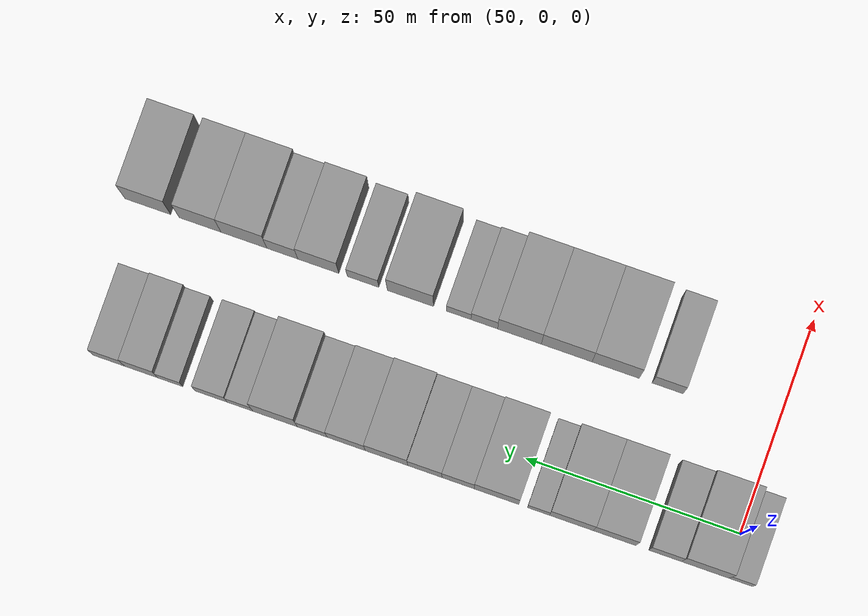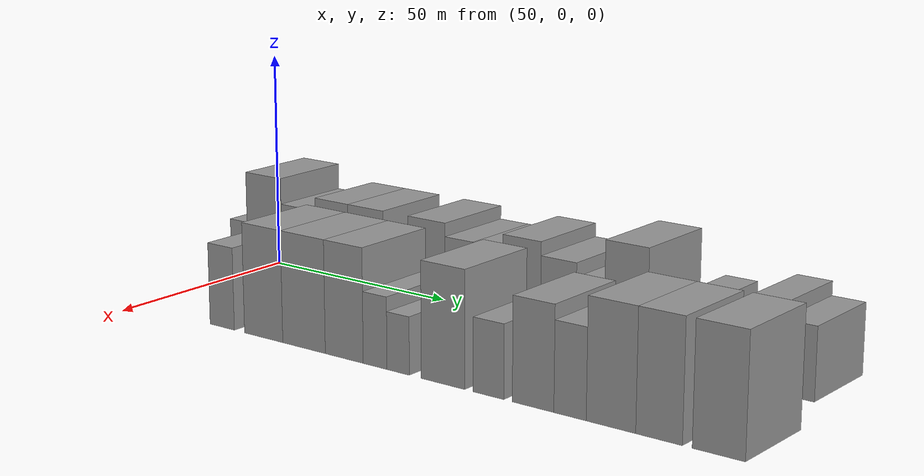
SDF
<sdf version="1.6">
 <world name="default">
  <model name="building_32">
   <static>1</static>
   <pose>50.0000 -3.4309 0 0.000000 0.000000 0.000000</pose>
   <link name="link">
    <pose>0 0 6.00 0 0 0</pose>
    <collision name="collision"><geometry><box><size>20.0000 5.4626 12.0000</size></box></geometry></collision>
    <visual name="visual">
     <cast_shadows>0</cast_shadows>
     <geometry><box><size>20.0000 5.4626 12.0000</size></box></geometry>
     <material>
      <script>
       <uri>model://grey_wall/materials/scripts</uri>
       <uri>model://grey_wall/materials/textures</uri>
       <name>vrc/grey_wall</name>
      </script>
     </material>
    </visual>
   </link>
  </model>
  <model name="building_33">
   <static>1</static>
   <pose>50.0000 4.8221 0 0.000000 0.000000 0.000000</pose>
   <link name="link">
    <pose>0 0 12.00 0 0 0</pose>
    <collision name="collision"><geometry><box><size>20.0000 11.0434 24.0000</size></box></geometry></collision>
    <visual name="visual">
     <cast_shadows>0</cast_shadows>
     <geometry><box><size>20.0000 11.0434 24.0000</size></box></geometry>
     <material>
      <script>
       <uri>model://grey_wall/materials/scripts</uri>
       <uri>model://grey_wall/materials/textures</uri>
       <name>vrc/grey_wall</name>
      </script>
     </material>
    </visual>
   </link>
  </model>
  <model name="building_34">
   <static>1</static>
   <pose>50.0000 14.1204 0 0.000000 0.000000 0.000000</pose>
   <link name="link">
    <pose>0 0 9.00 0 0 0</pose>
    <collision name="collision"><geometry><box><size>20.0000 7.5531 18.0000</size></box></geometry></collision>
    <visual name="visual">
     <cast_shadows>0</cast_shadows>
     <geometry><box><size>20.0000 7.5531 18.0000</size></box></geometry>
     <material>
      <script>
       <uri>model://grey_wall/materials/scripts</uri>
       <uri>model://grey_wall/materials/textures</uri>
       <name>vrc/grey_wall</name>
      </script>
     </material>
    </visual>
   </link>
  </model>
  <model name="building_35">
   <static>1</static>
   <pose>50.0000 25.8246 0 0.000000 0.000000 0.000000</pose>
   <link name="link">
    <pose>0 0 10.50 0 0 0</pose>
    <collision name="collision"><geometry><box><size>20.0000 9.8552 21.0000</size></box></geometry></collision>
    <visual name="visual">
     <cast_shadows>0</cast_shadows>
     <geometry><box><size>20.0000 9.8552 21.0000</size></box></geometry>
     <material>
      <script>
       <uri>model://grey_wall/materials/scripts</uri>
       <uri>model://grey_wall/materials/textures</uri>
       <name>vrc/grey_wall</name>
      </script>
     </material>
    </visual>
   </link>
  </model>
  <model name="building_36">
   <static>1</static>
   <pose>50.0000 35.8675 0 0.000000 0.000000 0.000000</pose>
   <link name="link">
    <pose>0 0 10.50 0 0 0</pose>
    <collision name="collision"><geometry><box><size>20.0000 10.2308 21.0000</size></box></geometry></collision>
    <visual name="visual">
     <cast_shadows>0</cast_shadows>
     <geometry><box><size>20.0000 10.2308 21.0000</size></box></geometry>
     <material>
      <script>
       <uri>model://grey_wall/materials/scripts</uri>
       <uri>model://grey_wall/materials/textures</uri>
       <name>vrc/grey_wall</name>
      </script>
     </material>
    </visual>
   </link>
  </model>
  <model name="building_37">
   <static>1</static>
   <pose>50.0000 43.5499 0 0.000000 0.000000 0.000000</pose>
   <link name="link">
    <pose>0 0 6.00 0 0 0</pose>
    <collision name="collision"><geometry><box><size>20.0000 5.1339 12.0000</size></box></geometry></collision>
    <visual name="visual">
     <cast_shadows>0</cast_shadows>
     <geometry><box><size>20.0000 5.1339 12.0000</size></box></geometry>
     <material>
      <script>
       <uri>model://grey_wall/materials/scripts</uri>
       <uri>model://grey_wall/materials/textures</uri>
       <name>vrc/grey_wall</name>
      </script>
     </material>
    </visual>
   </link>
  </model>
  <model name="building_38">
   <static>1</static>
   <pose>50.0000 53.2975 0 0.000000 0.000000 0.000000</pose>
   <link name="link">
    <pose>0 0 10.50 0 0 0</pose>
    <collision name="collision"><geometry><box><size>20.0000 10.3613 21.0000</size></box></geometry></collision>
    <visual name="visual">
     <cast_shadows>0</cast_shadows>
     <geometry><box><size>20.0000 10.3613 21.0000</size></box></geometry>
     <material>
      <script>
       <uri>model://grey_wall/materials/scripts</uri>
       <uri>model://grey_wall/materials/textures</uri>
       <name>vrc/grey_wall</name>
      </script>
     </material>
    </visual>
   </link>
  </model>
  <model name="building_39">
   <static>1</static>
   <pose>50.0000 62.2341 0 0.000000 0.000000 0.000000</pose>
   <link name="link">
    <pose>0 0 9.00 0 0 0</pose>
    <collision name="collision"><geometry><box><size>20.0000 7.5119 18.0000</size></box></geometry></collision>
    <visual name="visual">
     <cast_shadows>0</cast_shadows>
     <geometry><box><size>20.0000 7.5119 18.0000</size></box></geometry>
     <material>
      <script>
       <uri>model://grey_wall/materials/scripts</uri>
       <uri>model://grey_wall/materials/textures</uri>
       <name>vrc/grey_wall</name>
      </script>
     </material>
    </visual>
   </link>
  </model>
  <model name="building_40">
   <static>1</static>
   <pose>50.0000 69.9717 0 0.000000 0.000000 0.000000</pose>
   <link name="link">
    <pose>0 0 9.00 0 0 0</pose>
    <collision name="collision"><geometry><box><size>20.0000 7.9632 18.0000</size></box></geometry></collision>
    <visual name="visual">
     <cast_shadows>0</cast_shadows>
     <geometry><box><size>20.0000 7.9632 18.0000</size></box></geometry>
     <material>
      <script>
       <uri>model://grey_wall/materials/scripts</uri>
       <uri>model://grey_wall/materials/textures</uri>
       <name>vrc/grey_wall</name>
      </script>
     </material>
    </visual>
   </link>
  </model>
  <model name="building_41">
   <static>1</static>
   <pose>50.0000 78.8873 0 0.000000 0.000000 0.000000</pose>
   <link name="link">
    <pose>0 0 10.50 0 0 0</pose>
    <collision name="collision"><geometry><box><size>20.0000 9.8679 21.0000</size></box></geometry></collision>
    <visual name="visual">
     <cast_shadows>0</cast_shadows>
     <geometry><box><size>20.0000 9.8679 21.0000</size></box></geometry>
     <material>
      <script>
       <uri>model://grey_wall/materials/scripts</uri>
       <uri>model://grey_wall/materials/textures</uri>
       <name>vrc/grey_wall</name>
      </script>
     </material>
    </visual>
   </link>
  </model>
  <model name="building_42">
   <static>1</static>
   <pose>50.0000 88.2844 0 0.000000 0.000000 0.000000</pose>
   <link name="link">
    <pose>0 0 9.00 0 0 0</pose>
    <collision name="collision"><geometry><box><size>20.0000 8.9264 18.0000</size></box></geometry></collision>
    <visual name="visual">
     <cast_shadows>0</cast_shadows>
     <geometry><box><size>20.0000 8.9264 18.0000</size></box></geometry>
     <material>
      <script>
       <uri>model://grey_wall/materials/scripts</uri>
       <uri>model://grey_wall/materials/textures</uri>
       <name>vrc/grey_wall</name>
      </script>
     </material>
    </visual>
   </link>
  </model>
  <model name="building_43">
   <static>1</static>
   <pose>50.0000 96.2258 0 0.000000 0.000000 0.000000</pose>
   <link name="link">
    <pose>0 0 7.50 0 0 0</pose>
    <collision name="collision"><geometry><box><size>20.0000 6.9563 15.0000</size></box></geometry></collision>
    <visual name="visual">
     <cast_shadows>0</cast_shadows>
     <geometry><box><size>20.0000 6.9563 15.0000</size></box></geometry>
     <material>
      <script>
       <uri>model://grey_wall/materials/scripts</uri>
       <uri>model://grey_wall/materials/textures</uri>
       <name>vrc/grey_wall</name>
      </script>
     </material>
    </visual>
   </link>
  </model>
  <model name="building_44">
   <static>1</static>
   <pose>50.0000 104.8939 0 0.000000 0.000000 0.000000</pose>
   <link name="link">
    <pose>0 0 12.00 0 0 0</pose>
    <collision name="collision"><geometry><box><size>20.0000 10.3800 24.0000</size></box></geometry></collision>
    <visual name="visual">
     <cast_shadows>0</cast_shadows>
     <geometry><box><size>20.0000 10.3800 24.0000</size></box></geometry>
     <material>
      <script>
       <uri>model://grey_wall/materials/scripts</uri>
       <uri>model://grey_wall/materials/textures</uri>
       <name>vrc/grey_wall</name>
      </script>
     </material>
    </visual>
   </link>
  </model>
  <model name="building_45">
   <static>1</static>
   <pose>50.0000 113.0699 0 0.000000 0.000000 0.000000</pose>
   <link name="link">
    <pose>0 0 6.00 0 0 0</pose>
    <collision name="collision"><geometry><box><size>20.0000 5.9718 12.0000</size></box></geometry></collision>
    <visual name="visual">
     <cast_shadows>0</cast_shadows>
     <geometry><box><size>20.0000 5.9718 12.0000</size></box></geometry>
     <material>
      <script>
       <uri>model://grey_wall/materials/scripts</uri>
       <uri>model://grey_wall/materials/textures</uri>
       <name>vrc/grey_wall</name>
      </script>
     </material>
    </visual>
   </link>
  </model>
  <model name="building_46">
   <static>1</static>
   <pose>50.0000 119.7701 0 0.000000 0.000000 0.000000</pose>
   <link name="link">
    <pose>0 0 7.50 0 0 0</pose>
    <collision name="collision"><geometry><box><size>20.0000 7.4286 15.0000</size></box></geometry></collision>
    <visual name="visual">
     <cast_shadows>0</cast_shadows>
     <geometry><box><size>20.0000 7.4286 15.0000</size></box></geometry>
     <material>
      <script>
       <uri>model://grey_wall/materials/scripts</uri>
       <uri>model://grey_wall/materials/textures</uri>
       <name>vrc/grey_wall</name>
      </script>
     </material>
    </visual>
   </link>
  </model>
  <model name="building_47">
   <static>1</static>
   <pose>50.0000 129.3708 0 0.000000 0.000000 0.000000</pose>
   <link name="link">
    <pose>0 0 6.00 0 0 0</pose>
    <collision name="collision"><geometry><box><size>20.0000 5.7727 12.0000</size></box></geometry></collision>
    <visual name="visual">
     <cast_shadows>0</cast_shadows>
     <geometry><box><size>20.0000 5.7727 12.0000</size></box></geometry>
     <material>
      <script>
       <uri>model://grey_wall/materials/scripts</uri>
       <uri>model://grey_wall/materials/textures</uri>
       <name>vrc/grey_wall</name>
      </script>
     </material>
    </visual>
   </link>
  </model>
  <model name="building_48">
   <static>1</static>
   <pose>50.0000 136.1552 0 0.000000 0.000000 0.000000</pose>
   <link name="link">
    <pose>0 0 9.00 0 0 0</pose>
    <collision name="collision"><geometry><box><size>20.0000 7.7961 18.0000</size></box></geometry></collision>
    <visual name="visual">
     <cast_shadows>0</cast_shadows>
     <geometry><box><size>20.0000 7.7961 18.0000</size></box></geometry>
     <material>
      <script>
       <uri>model://grey_wall/materials/scripts</uri>
       <uri>model://grey_wall/materials/textures</uri>
       <name>vrc/grey_wall</name>
      </script>
     </material>
    </visual>
   </link>
  </model>
  <model name="building_49">
   <static>1</static>
   <pose>50.0000 143.7373 0 0.000000 0.000000 0.000000</pose>
   <link name="link">
    <pose>0 0 7.50 0 0 0</pose>
    <collision name="collision"><geometry><box><size>20.0000 7.3680 15.0000</size></box></geometry></collision>
    <visual name="visual">
     <cast_shadows>0</cast_shadows>
     <geometry><box><size>20.0000 7.3680 15.0000</size></box></geometry>
     <material>
      <script>
       <uri>model://grey_wall/materials/scripts</uri>
       <uri>model://grey_wall/materials/textures</uri>
       <name>vrc/grey_wall</name>
      </script>
     </material>
    </visual>
   </link>
  </model>
  <model name="building_98">
   <static>1</static>
   <pose>85.0000 25.6211 0 0.000000 0.000000 0.000000</pose>
   <link name="link">
    <pose>0 0 9.00 0 0 0</pose>
    <collision name="collision"><geometry><box><size>20.0000 7.2183 18.0000</size></box></geometry></collision>
    <visual name="visual">
     <cast_shadows>0</cast_shadows>
     <geometry><box><size>20.0000 7.2183 18.0000</size></box></geometry>
     <material>
      <script>
       <uri>model://grey_wall/materials/scripts</uri>
       <uri>model://grey_wall/materials/textures</uri>
       <name>vrc/grey_wall</name>
      </script>
     </material>
    </visual>
   </link>
  </model>
  <model name="building_99">
   <static>1</static>
   <pose>85.0000 37.7365 0 0.000000 0.000000 0.000000</pose>
   <link name="link">
    <pose>0 0 12.00 0 0 0</pose>
    <collision name="collision"><geometry><box><size>20.0000 11.0126 24.0000</size></box></geometry></collision>
    <visual name="visual">
     <cast_shadows>0</cast_shadows>
     <geometry><box><size>20.0000 11.0126 24.0000</size></box></geometry>
     <material>
      <script>
       <uri>model://grey_wall/materials/scripts</uri>
       <uri>model://grey_wall/materials/textures</uri>
       <name>vrc/grey_wall</name>
      </script>
     </material>
    </visual>
   </link>
  </model>
  <model name="building_100">
   <static>1</static>
   <pose>85.0000 49.1598 0 0.000000 0.000000 0.000000</pose>
   <link name="link">
    <pose>0 0 12.00 0 0 0</pose>
    <collision name="collision"><geometry><box><size>20.0000 11.8340 24.0000</size></box></geometry></collision>
    <visual name="visual">
     <cast_shadows>0</cast_shadows>
     <geometry><box><size>20.0000 11.8340 24.0000</size></box></geometry>
     <material>
      <script>
       <uri>model://grey_wall/materials/scripts</uri>
       <uri>model://grey_wall/materials/textures</uri>
       <name>vrc/grey_wall</name>
      </script>
     </material>
    </visual>
   </link>
  </model>
  <model name="building_101">
   <static>1</static>
   <pose>85.0000 60.1749 0 0.000000 0.000000 0.000000</pose>
   <link name="link">
    <pose>0 0 12.00 0 0 0</pose>
    <collision name="collision"><geometry><box><size>20.0000 10.1961 24.0000</size></box></geometry></collision>
    <visual name="visual">
     <cast_shadows>0</cast_shadows>
     <geometry><box><size>20.0000 10.1961 24.0000</size></box></geometry>
     <material>
      <script>
       <uri>model://grey_wall/materials/scripts</uri>
       <uri>model://grey_wall/materials/textures</uri>
       <name>vrc/grey_wall</name>
      </script>
     </material>
    </visual>
   </link>
  </model>
  <model name="building_102">
   <static>1</static>
   <pose>85.0000 68.3867 0 0.000000 0.000000 0.000000</pose>
   <link name="link">
    <pose>0 0 7.50 0 0 0</pose>
    <collision name="collision"><geometry><box><size>20.0000 6.2275 15.0000</size></box></geometry></collision>
    <visual name="visual">
     <cast_shadows>0</cast_shadows>
     <geometry><box><size>20.0000 6.2275 15.0000</size></box></geometry>
     <material>
      <script>
       <uri>model://grey_wall/materials/scripts</uri>
       <uri>model://grey_wall/materials/textures</uri>
       <name>vrc/grey_wall</name>
      </script>
     </material>
    </visual>
   </link>
  </model>
  <model name="building_103">
   <static>1</static>
   <pose>85.0000 74.3797 0 0.000000 0.000000 0.000000</pose>
   <link name="link">
    <pose>0 0 6.00 0 0 0</pose>
    <collision name="collision"><geometry><box><size>20.0000 5.7584 12.0000</size></box></geometry></collision>
    <visual name="visual">
     <cast_shadows>0</cast_shadows>
     <geometry><box><size>20.0000 5.7584 12.0000</size></box></geometry>
     <material>
      <script>
       <uri>model://grey_wall/materials/scripts</uri>
       <uri>model://grey_wall/materials/textures</uri>
       <name>vrc/grey_wall</name>
      </script>
     </material>
    </visual>
   </link>
  </model>
  <model name="building_104">
   <static>1</static>
   <pose>85.0000 85.6595 0 0.000000 0.000000 0.000000</pose>
   <link name="link">
    <pose>0 0 12.00 0 0 0</pose>
    <collision name="collision"><geometry><box><size>20.0000 10.8012 24.0000</size></box></geometry></collision>
    <visual name="visual">
     <cast_shadows>0</cast_shadows>
     <geometry><box><size>20.0000 10.8012 24.0000</size></box></geometry>
     <material>
      <script>
       <uri>model://grey_wall/materials/scripts</uri>
       <uri>model://grey_wall/materials/textures</uri>
       <name>vrc/grey_wall</name>
      </script>
     </material>
    </visual>
   </link>
  </model>
  <model name="building_105">
   <static>1</static>
   <pose>85.0000 96.7457 0 0.000000 0.000000 0.000000</pose>
   <link name="link">
    <pose>0 0 7.50 0 0 0</pose>
    <collision name="collision"><geometry><box><size>20.0000 7.3713 15.0000</size></box></geometry></collision>
    <visual name="visual">
     <cast_shadows>0</cast_shadows>
     <geometry><box><size>20.0000 7.3713 15.0000</size></box></geometry>
     <material>
      <script>
       <uri>model://grey_wall/materials/scripts</uri>
       <uri>model://grey_wall/materials/textures</uri>
       <name>vrc/grey_wall</name>
      </script>
     </material>
    </visual>
   </link>
  </model>
  <model name="building_106">
   <static>1</static>
   <pose>85.0000 107.2234 0 0.000000 0.000000 0.000000</pose>
   <link name="link">
    <pose>0 0 10.50 0 0 0</pose>
    <collision name="collision"><geometry><box><size>20.0000 9.5841 21.0000</size></box></geometry></collision>
    <visual name="visual">
     <cast_shadows>0</cast_shadows>
     <geometry><box><size>20.0000 9.5841 21.0000</size></box></geometry>
     <material>
      <script>
       <uri>model://grey_wall/materials/scripts</uri>
       <uri>model://grey_wall/materials/textures</uri>
       <name>vrc/grey_wall</name>
      </script>
     </material>
    </visual>
   </link>
  </model>
  <model name="building_107">
   <static>1</static>
   <pose>85.0000 115.6477 0 0.000000 0.000000 0.000000</pose>
   <link name="link">
    <pose>0 0 9.00 0 0 0</pose>
    <collision name="collision"><geometry><box><size>20.0000 7.2645 18.0000</size></box></geometry></collision>
    <visual name="visual">
     <cast_shadows>0</cast_shadows>
     <geometry><box><size>20.0000 7.2645 18.0000</size></box></geometry>
     <material>
      <script>
       <uri>model://grey_wall/materials/scripts</uri>
       <uri>model://grey_wall/materials/textures</uri>
       <name>vrc/grey_wall</name>
      </script>
     </material>
    </visual>
   </link>
  </model>
  <model name="building_108">
   <static>1</static>
   <pose>85.0000 124.6630 0 0.000000 0.000000 0.000000</pose>
   <link name="link">
    <pose>0 0 12.00 0 0 0</pose>
    <collision name="collision"><geometry><box><size>20.0000 10.7661 24.0000</size></box></geometry></collision>
    <visual name="visual">
     <cast_shadows>0</cast_shadows>
     <geometry><box><size>20.0000 10.7661 24.0000</size></box></geometry>
     <material>
      <script>
       <uri>model://grey_wall/materials/scripts</uri>
       <uri>model://grey_wall/materials/textures</uri>
       <name>vrc/grey_wall</name>
      </script>
     </material>
    </visual>
   </link>
  </model>
  <model name="building_109">
   <static>1</static>
   <pose>85.0000 134.9512 0 0.000000 0.000000 0.000000</pose>
   <link name="link">
    <pose>0 0 12.00 0 0 0</pose>
    <collision name="collision"><geometry><box><size>20.0000 9.8102 24.0000</size></box></geometry></collision>
    <visual name="visual">
     <cast_shadows>0</cast_shadows>
     <geometry><box><size>20.0000 9.8102 24.0000</size></box></geometry>
     <material>
      <script>
       <uri>model://grey_wall/materials/scripts</uri>
       <uri>model://grey_wall/materials/textures</uri>
       <name>vrc/grey_wall</name>
      </script>
     </material>
    </visual>
   </link>
  </model>
  <model name="building_110">
   <static>1</static>
   <pose>85.0000 147.2173 0 0.000000 0.000000 0.000000</pose>
   <link name="link">
    <pose>0 0 12.00 0 0 0</pose>
    <collision name="collision"><geometry><box><size>20.0000 10.7220 24.0000</size></box></geometry></collision>
    <visual name="visual">
     <cast_shadows>0</cast_shadows>
     <geometry><box><size>20.0000 10.7220 24.0000</size></box></geometry>
     <material>
      <script>
       <uri>model://grey_wall/materials/scripts</uri>
       <uri>model://grey_wall/materials/textures</uri>
       <name>vrc/grey_wall</name>
      </script>
     </material>
    </visual>
   </link>
  </model>
 </world>
</sdf>
